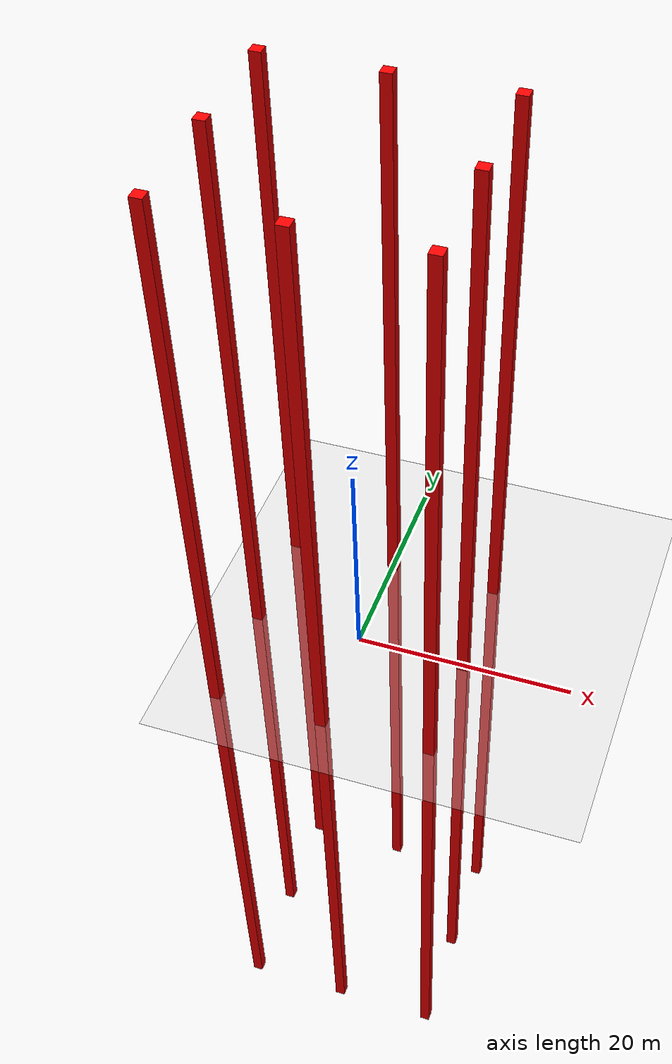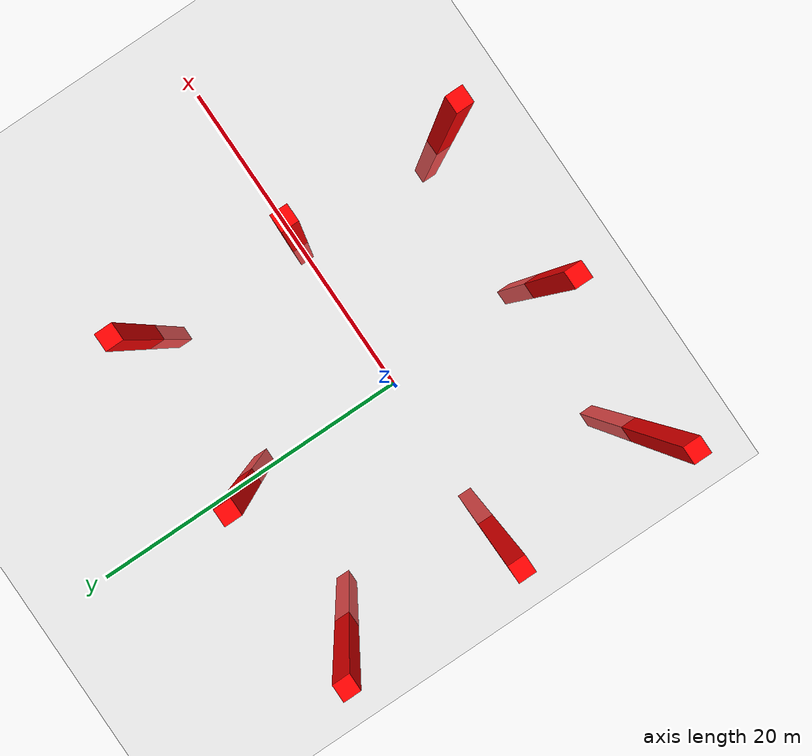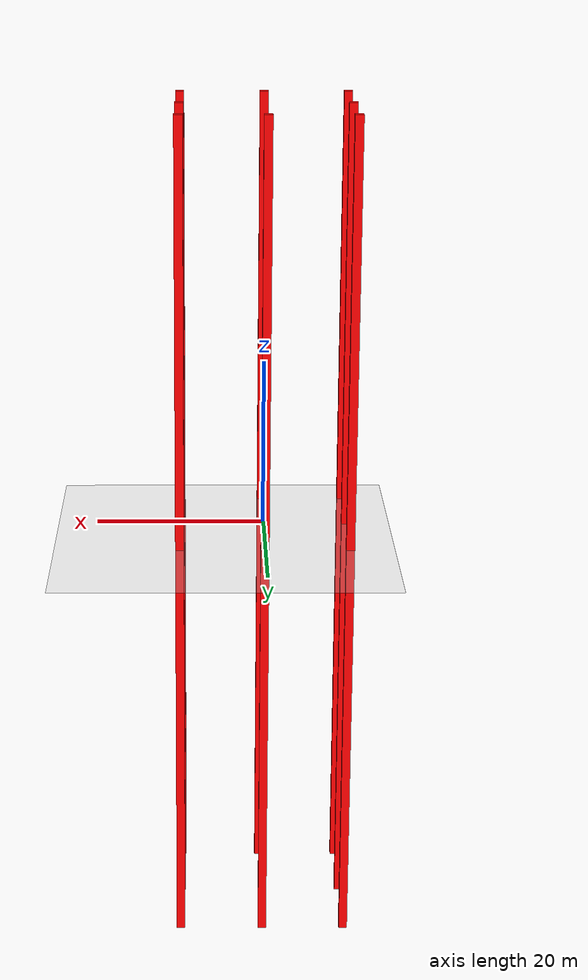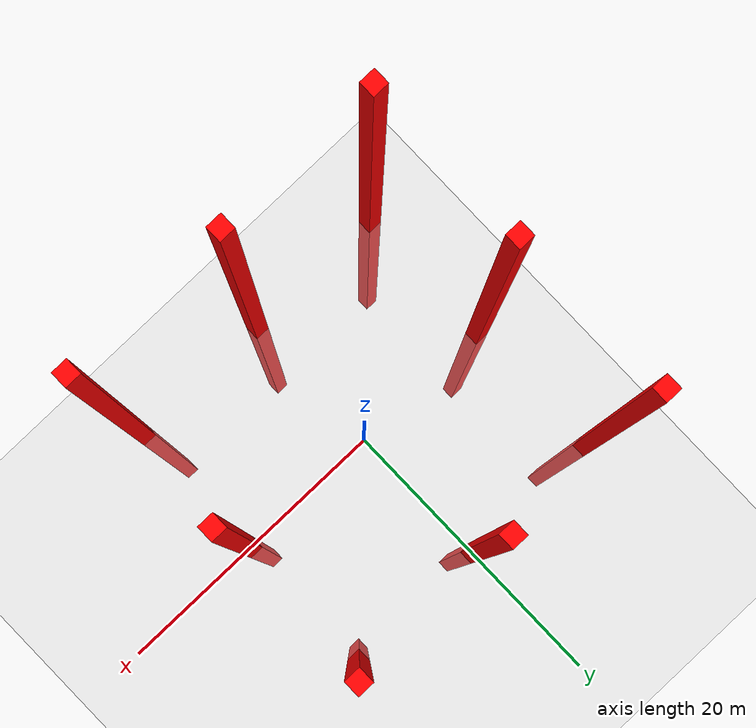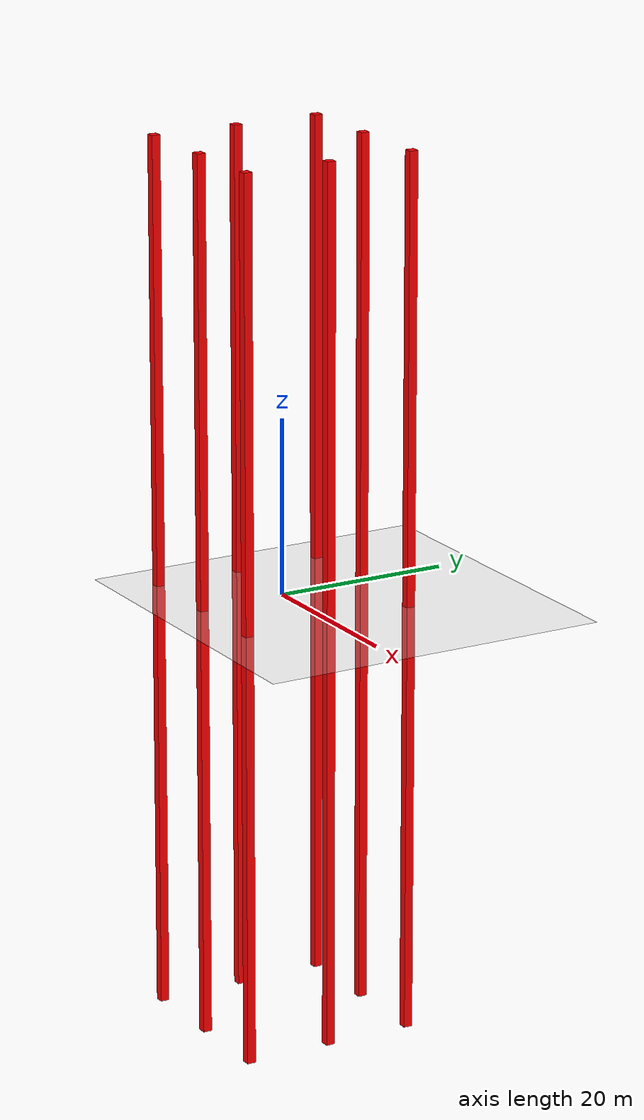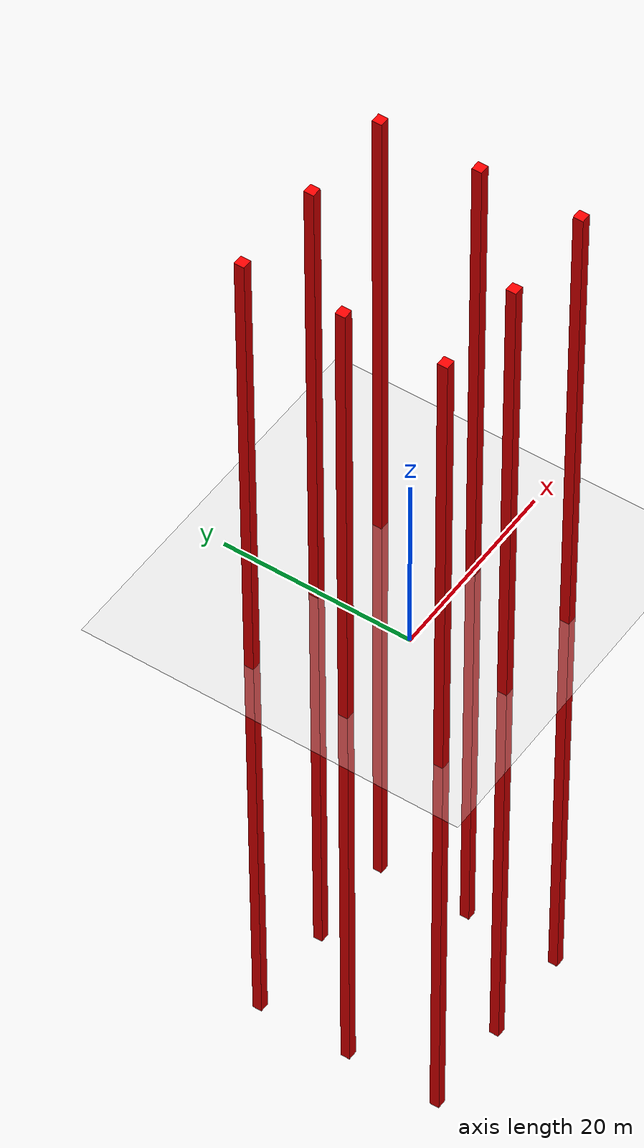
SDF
<?xml version="1.0" encoding="UTF-8"?>
<sdf version="1.9">
  <world name="default">
    <physics type="ode">
      <max_step_size>0.004</max_step_size>
      <real_time_factor>1.0</real_time_factor>
      <real_time_update_rate>250</real_time_update_rate>
    </physics>
    <plugin name="gz::sim::systems::Physics" filename="gz-sim-physics-system" />
    <plugin name="gz::sim::systems::UserCommands" filename="gz-sim-user-commands-system" />
    <plugin name="gz::sim::systems::SceneBroadcaster" filename="gz-sim-scene-broadcaster-system" />
    <plugin name="gz::sim::systems::Contact" filename="gz-sim-contact-system" />
    <plugin name="gz::sim::systems::Imu" filename="gz-sim-imu-system" />
    <plugin name="gz::sim::systems::AirPressure" filename="gz-sim-air-pressure-system" />
    <plugin name="gz::sim::systems::ApplyLinkWrench" filename="gz-sim-apply-link-wrench-system" />
    <plugin name="gz::sim::systems::NavSat" filename="gz-sim-navsat-system" />
    <plugin name="gz::sim::systems::Sensors" filename="gz-sim-sensors-system">
      <render_engine>ogre2</render_engine>
    </plugin>
    <gui fullscreen="false">
      <!-- 3D scene -->
      <plugin filename="MinimalScene" name="3D View">
        <gz-gui>
          <title>3D View</title>
          <property type="bool" key="showTitleBar">false</property>
          <property type="string" key="state">docked</property>
        </gz-gui>
        <engine>ogre2</engine>
        <scene>scene</scene>
        <ambient_light>0.4 0.4 0.4</ambient_light>
        <background_color>0.8 0.8 0.8</background_color>
        <camera_pose>-6 0 6 0 0.5 0</camera_pose>
        <camera_clip>
          <near>0.25</near>
          <far>25000</far>
        </camera_clip>
      </plugin>
      <!-- Plugins that add functionality to the scene -->
      <plugin filename="EntityContextMenuPlugin" name="Entity context menu">
        <gz-gui>
          <property key="state" type="string">floating</property>
          <property key="width" type="double">5</property>
          <property key="height" type="double">5</property>
          <property key="showTitleBar" type="bool">false</property>
        </gz-gui>
      </plugin>
      <plugin filename="GzSceneManager" name="Scene Manager">
        <gz-gui>
          <property key="resizable" type="bool">false</property>
          <property key="width" type="double">5</property>
          <property key="height" type="double">5</property>
          <property key="state" type="string">floating</property>
          <property key="showTitleBar" type="bool">false</property>
        </gz-gui>
      </plugin>
      <plugin filename="InteractiveViewControl" name="Interactive view control">
        <gz-gui>
          <property key="resizable" type="bool">false</property>
          <property key="width" type="double">5</property>
          <property key="height" type="double">5</property>
          <property key="state" type="string">floating</property>
          <property key="showTitleBar" type="bool">false</property>
        </gz-gui>
      </plugin>
      <plugin filename="CameraTracking" name="Camera Tracking">
        <gz-gui>
          <property key="resizable" type="bool">false</property>
          <property key="width" type="double">5</property>
          <property key="height" type="double">5</property>
          <property key="state" type="string">floating</property>
          <property key="showTitleBar" type="bool">false</property>
        </gz-gui>
      </plugin>
      <plugin filename="MarkerManager" name="Marker manager">
        <gz-gui>
          <property key="resizable" type="bool">false</property>
          <property key="width" type="double">5</property>
          <property key="height" type="double">5</property>
          <property key="state" type="string">floating</property>
          <property key="showTitleBar" type="bool">false</property>
        </gz-gui>
      </plugin>
      <plugin filename="SelectEntities" name="Select Entities">
        <gz-gui>
          <anchors target="Select entities">
            <line own="right" target="right" />
            <line own="top" target="top" />
          </anchors>
          <property key="resizable" type="bool">false</property>
          <property key="width" type="double">5</property>
          <property key="height" type="double">5</property>
          <property key="state" type="string">floating</property>
          <property key="showTitleBar" type="bool">false</property>
        </gz-gui>
      </plugin>
      <plugin filename="VisualizationCapabilities" name="Visualization Capabilities">
        <gz-gui>
          <property key="resizable" type="bool">false</property>
          <property key="width" type="double">5</property>
          <property key="height" type="double">5</property>
          <property key="state" type="string">floating</property>
          <property key="showTitleBar" type="bool">false</property>
        </gz-gui>
      </plugin>
      <plugin filename="Spawn" name="Spawn Entities">
        <gz-gui>
          <anchors target="Select entities">
            <line own="right" target="right" />
            <line own="top" target="top" />
          </anchors>
          <property key="resizable" type="bool">false</property>
          <property key="width" type="double">5</property>
          <property key="height" type="double">5</property>
          <property key="state" type="string">floating</property>
          <property key="showTitleBar" type="bool">false</property>
        </gz-gui>
      </plugin>
      <plugin name="World control" filename="WorldControl">
        <gz-gui>
          <title>World control</title>
          <property type="bool" key="showTitleBar">0</property>
          <property type="bool" key="resizable">0</property>
          <property type="double" key="height">72</property>
          <property type="double" key="width">121</property>
          <property type="double" key="z">1</property>
          <property type="string" key="state">floating</property>
          <anchors target="3D View">
            <line own="left" target="left" />
            <line own="bottom" target="bottom" />
          </anchors>
        </gz-gui>
        <play_pause>1</play_pause>
        <step>1</step>
        <start_paused>1</start_paused>
      </plugin>
      <plugin name="World stats" filename="WorldStats">
        <gz-gui>
          <title>World stats</title>
          <property type="bool" key="showTitleBar">0</property>
          <property type="bool" key="resizable">0</property>
          <property type="double" key="height">110</property>
          <property type="double" key="width">290</property>
          <property type="double" key="z">1</property>
          <property type="string" key="state">floating</property>
          <anchors target="3D View">
            <line own="right" target="right" />
            <line own="bottom" target="bottom" />
          </anchors>
        </gz-gui>
        <sim_time>1</sim_time>
        <real_time>1</real_time>
        <real_time_factor>1</real_time_factor>
        <iterations>1</iterations>
      </plugin>
      <plugin name="Entity tree" filename="EntityTree" />
    </gui>
    <gravity>0 0 -9.8</gravity>
    <magnetic_field>6e-06 2.3e-05 -4.2e-05</magnetic_field>
    <atmosphere type="adiabatic" />
    <scene>
      <grid>false</grid>
      <ambient>0.4 0.4 0.4 1</ambient>
      <background>0.7 0.7 0.7 1</background>
      <shadows>true</shadows>
    </scene>
    <model name="ground_plane">
      <static>true</static>
      <link name="link">
        <collision name="collision">
          <geometry>
            <plane>
              <normal>0 0 1</normal>
              <size>1 1</size>
            </plane>
          </geometry>
          <surface>
            <friction>
              <ode />
            </friction>
            <bounce />
            <contact />
          </surface>
        </collision>
        <visual name="visual">
          <geometry>
            <plane>
              <normal>0 0 1</normal>
              <size>100 100</size>
            </plane>
          </geometry>
          <material>
            <ambient>0.8 0.8 0.8 1</ambient>
            <diffuse>0.8 0.8 0.8 1</diffuse>
            <specular>0.8 0.8 0.8 1</specular>
          </material>
        </visual>
        <pose>0 0 0 0 -0 0</pose>
        <inertial>
          <pose>0 0 0 0 -0 0</pose>
          <mass>1</mass>
          <inertia>
            <ixx>1</ixx>
            <ixy>0</ixy>
            <ixz>0</ixz>
            <iyy>1</iyy>
            <iyz>0</iyz>
            <izz>1</izz>
          </inertia>
        </inertial>
        <enable_wind>false</enable_wind>
      </link>
      <pose>0 0 0 0 -0 0</pose>
      <self_collide>false</self_collide>
    </model>

    <model name="box_1">
      <pose>10 0 0.5 0 0 0</pose>
      <link name="box_link">
        <inertial>
          <inertia>
            <ixx>0.16666</ixx>
            <ixy>0</ixy>
            <ixz>0</ixz>
            <iyy>0.16666</iyy>
            <iyz>0</iyz>
            <izz>0.16666</izz>
          </inertia>
          <mass>1.0</mass>
        </inertial>
        <collision name="box_collision">
          <geometry>
            <box>
              <size>1 1 100</size>
            </box>
          </geometry>
        </collision>

        <visual name="box_visual">
          <geometry>
            <box>
              <size>1 1 100</size>
            </box>
          </geometry>
          <material>
            <ambient>1 0 0 1</ambient>
            <diffuse>1 0 0 1</diffuse>
            <specular>1 0 0 1</specular>
          </material>
        </visual>
      </link>
    </model>

    <model name="box_2">
      <pose>-10 0 0.5 0 0 0</pose>
      <link name="box_link">
        <inertial>
          <inertia>
            <ixx>0.16666</ixx>
            <ixy>0</ixy>
            <ixz>0</ixz>
            <iyy>0.16666</iyy>
            <iyz>0</iyz>
            <izz>0.16666</izz>
          </inertia>
          <mass>1.0</mass>
        </inertial>
        <collision name="box_collision">
          <geometry>
            <box>
              <size>1 1 100</size>
            </box>
          </geometry>
        </collision>

        <visual name="box_visual">
          <geometry>
            <box>
              <size>1 1 100</size>
            </box>
          </geometry>
          <material>
            <ambient>1 0 0 1</ambient>
            <diffuse>1 0 0 1</diffuse>
            <specular>1 0 0 1</specular>
          </material>
        </visual>
      </link>
    </model>

    <model name="box_3">
      <pose>0 10 0.5 0 0 0</pose>
      <link name="box_link">
        <inertial>
          <inertia>
            <ixx>0.16666</ixx>
            <ixy>0</ixy>
            <ixz>0</ixz>
            <iyy>0.16666</iyy>
            <iyz>0</iyz>
            <izz>0.16666</izz>
          </inertia>
          <mass>1.0</mass>
        </inertial>
        <collision name="box_collision">
          <geometry>
            <box>
              <size>1 1 100</size>
            </box>
          </geometry>
        </collision>

        <visual name="box_visual">
          <geometry>
            <box>
              <size>1 1 100</size>
            </box>
          </geometry>
          <material>
            <ambient>1 0 0 1</ambient>
            <diffuse>1 0 0 1</diffuse>
            <specular>1 0 0 1</specular>
          </material>
        </visual>
      </link>
    </model>

    <model name="box_4">
      <pose>0 -10 0.5 0 0 0</pose>
      <link name="box_link">
        <inertial>
          <inertia>
            <ixx>0.16666</ixx>
            <ixy>0</ixy>
            <ixz>0</ixz>
            <iyy>0.16666</iyy>
            <iyz>0</iyz>
            <izz>0.16666</izz>
          </inertia>
          <mass>1.0</mass>
        </inertial>
        <collision name="box_collision">
          <geometry>
            <box>
              <size>1 1 100</size>
            </box>
          </geometry>
        </collision>

        <visual name="box_visual">
          <geometry>
            <box>
              <size>1 1 100</size>
            </box>
          </geometry>
          <material>
            <ambient>1 0 0 1</ambient>
            <diffuse>1 0 0 1</diffuse>
            <specular>1 0 0 1</specular>
          </material>
        </visual>
      </link>
    </model>

    <model name="box_5">
      <pose>-10 -10 0.5 0 0 0</pose>
      <link name="box_link">
        <inertial>
          <inertia>
            <ixx>0.16666</ixx>
            <ixy>0</ixy>
            <ixz>0</ixz>
            <iyy>0.16666</iyy>
            <iyz>0</iyz>
            <izz>0.16666</izz>
          </inertia>
          <mass>1.0</mass>
        </inertial>
        <collision name="box_collision">
          <geometry>
            <box>
              <size>1 1 100</size>
            </box>
          </geometry>
        </collision>

        <visual name="box_visual">
          <geometry>
            <box>
              <size>1 1 100</size>
            </box>
          </geometry>
          <material>
            <ambient>1 0 0 1</ambient>
            <diffuse>1 0 0 1</diffuse>
            <specular>1 0 0 1</specular>
          </material>
        </visual>
      </link>
    </model>

    <model name="box_6">
      <pose>10 10 0.5 0 0 0</pose>
      <link name="box_link">
        <inertial>
          <inertia>
            <ixx>0.16666</ixx>
            <ixy>0</ixy>
            <ixz>0</ixz>
            <iyy>0.16666</iyy>
            <iyz>0</iyz>
            <izz>0.16666</izz>
          </inertia>
          <mass>1.0</mass>
        </inertial>
        <collision name="box_collision">
          <geometry>
            <box>
              <size>1 1 100</size>
            </box>
          </geometry>
        </collision>

        <visual name="box_visual">
          <geometry>
            <box>
              <size>1 1 100</size>
            </box>
          </geometry>
          <material>
            <ambient>1 0 0 1</ambient>
            <diffuse>1 0 0 1</diffuse>
            <specular>1 0 0 1</specular>
          </material>
        </visual>
      </link>
    </model>

    <model name="box_7">
      <pose>10 -10 0.5 0 0 0</pose>
      <link name="box_link">
        <inertial>
          <inertia>
            <ixx>0.16666</ixx>
            <ixy>0</ixy>
            <ixz>0</ixz>
            <iyy>0.16666</iyy>
            <iyz>0</iyz>
            <izz>0.16666</izz>
          </inertia>
          <mass>1.0</mass>
        </inertial>
        <collision name="box_collision">
          <geometry>
            <box>
              <size>1 1 100</size>
            </box>
          </geometry>
        </collision>

        <visual name="box_visual">
          <geometry>
            <box>
              <size>1 1 100</size>
            </box>
          </geometry>
          <material>
            <ambient>1 0 0 1</ambient>
            <diffuse>1 0 0 1</diffuse>
            <specular>1 0 0 1</specular>
          </material>
        </visual>
      </link>
    </model>

    <model name="box_8">
      <pose>-10 10 0.5 0 0 0</pose>
      <link name="box_link">
        <inertial>
          <inertia>
            <ixx>0.16666</ixx>
            <ixy>0</ixy>
            <ixz>0</ixz>
            <iyy>0.16666</iyy>
            <iyz>0</iyz>
            <izz>0.16666</izz>
          </inertia>
          <mass>1.0</mass>
        </inertial>
        <collision name="box_collision">
          <geometry>
            <box>
              <size>1 1 100</size>
            </box>
          </geometry>
        </collision>

        <visual name="box_visual">
          <geometry>
            <box>
              <size>1 1 100</size>
            </box>
          </geometry>
          <material>
            <ambient>1 0 0 1</ambient>
            <diffuse>1 0 0 1</diffuse>
            <specular>1 0 0 1</specular>
          </material>
        </visual>
      </link>
    </model>

    <light name="sunUTC" type="directional">
      <pose>0 0 500 0 -0 0</pose>
      <cast_shadows>true</cast_shadows>
      <intensity>1</intensity>
      <direction>0.001 0.625 -0.78</direction>
      <diffuse>0.904 0.904 0.904 1</diffuse>
      <specular>0.271 0.271 0.271 1</specular>
      <attenuation>
        <range>2000</range>
        <linear>0</linear>
        <constant>1</constant>
        <quadratic>0</quadratic>
      </attenuation>
      <spot>
        <inner_angle>0</inner_angle>
        <outer_angle>0</outer_angle>
        <falloff>0</falloff>
      </spot>
    </light>
    <spherical_coordinates>
      <surface_model>EARTH_WGS84</surface_model>
      <world_frame_orientation>ENU</world_frame_orientation>
      <latitude_deg>38.31505245792022</latitude_deg>
      <longitude_deg>-76.54880254022363</longitude_deg>
      <elevation>0</elevation>
    </spherical_coordinates>
  </world>
</sdf>
